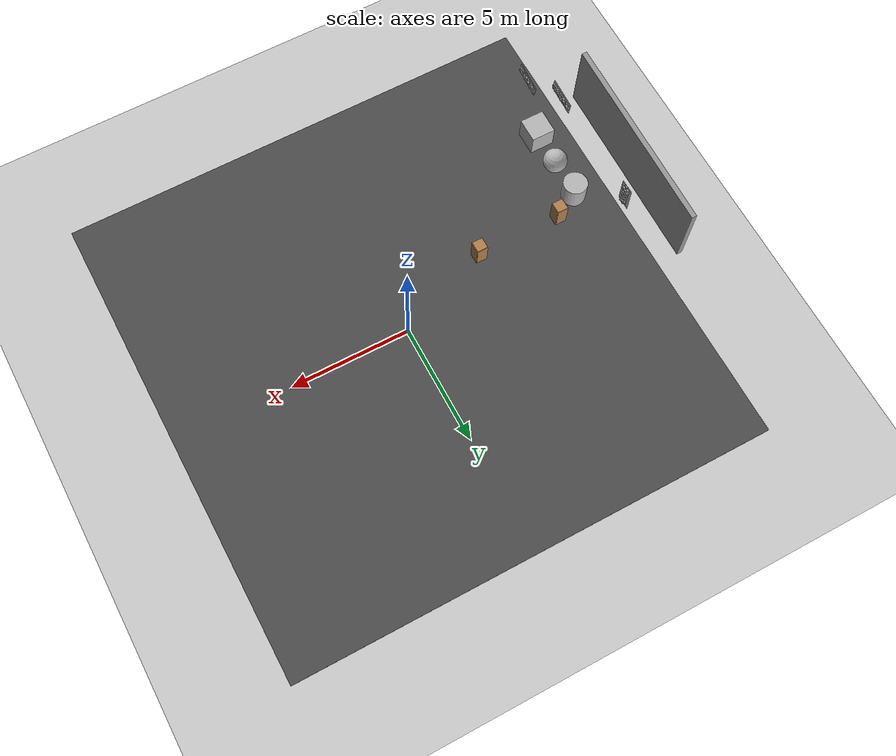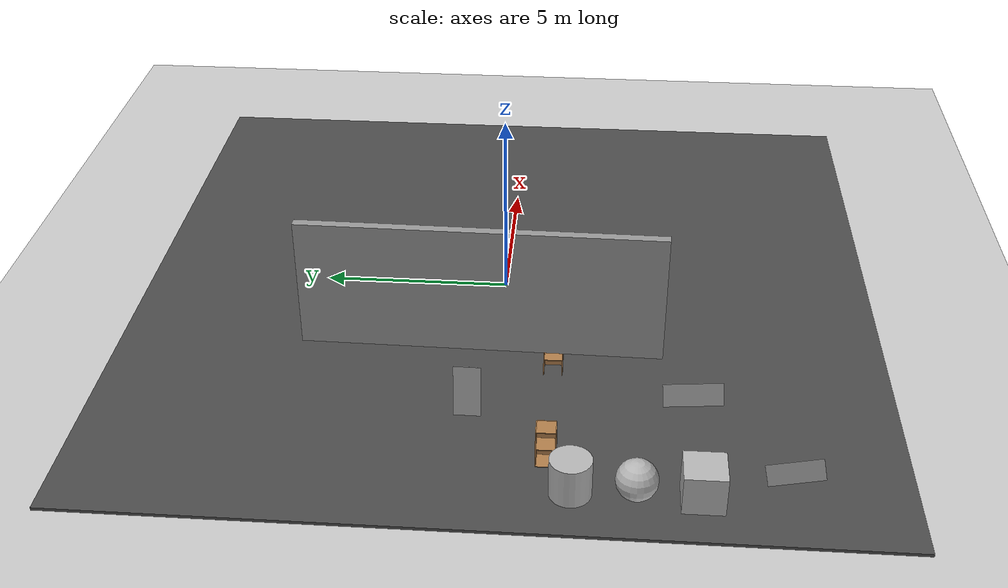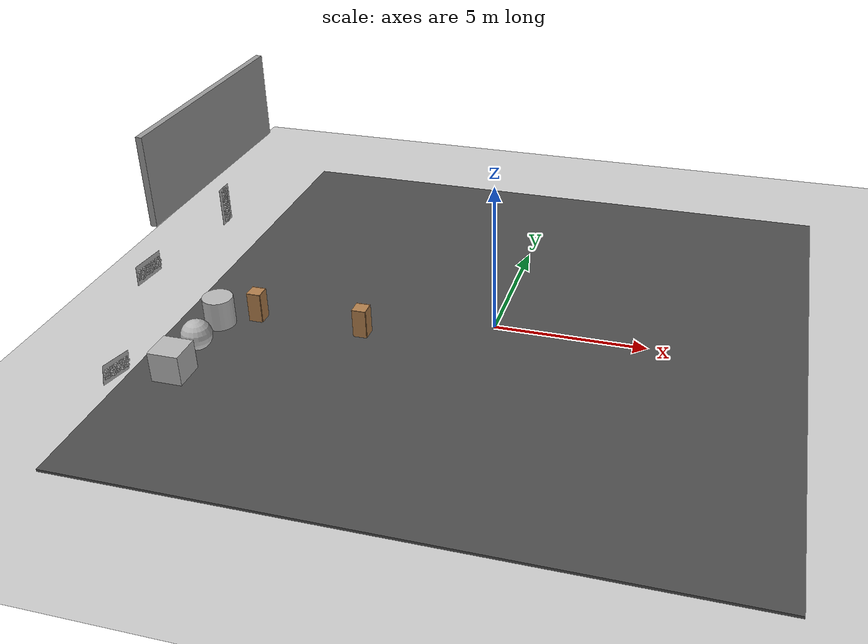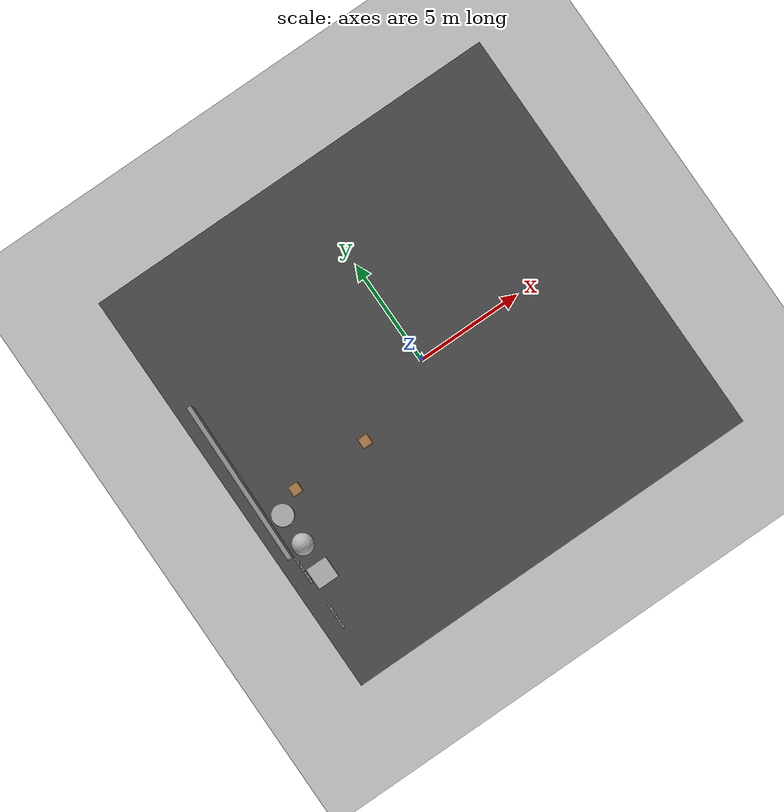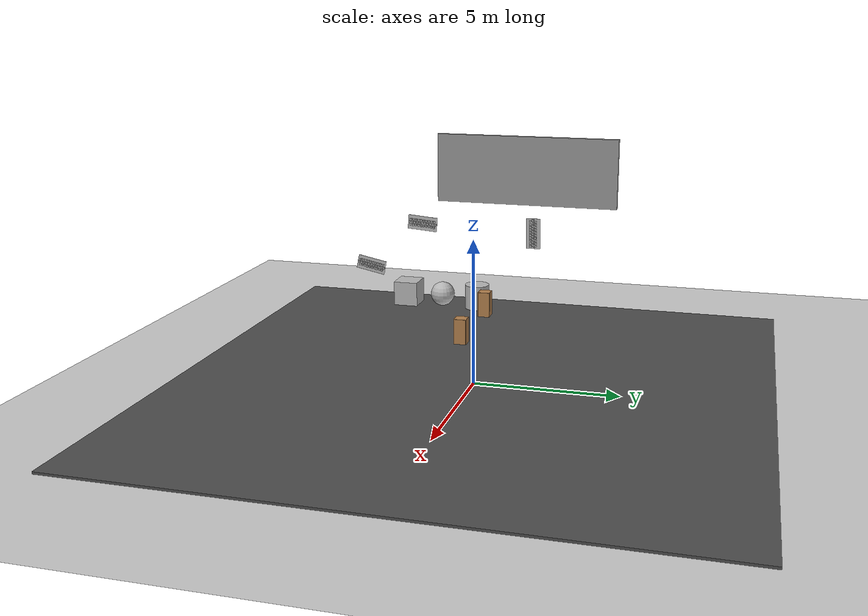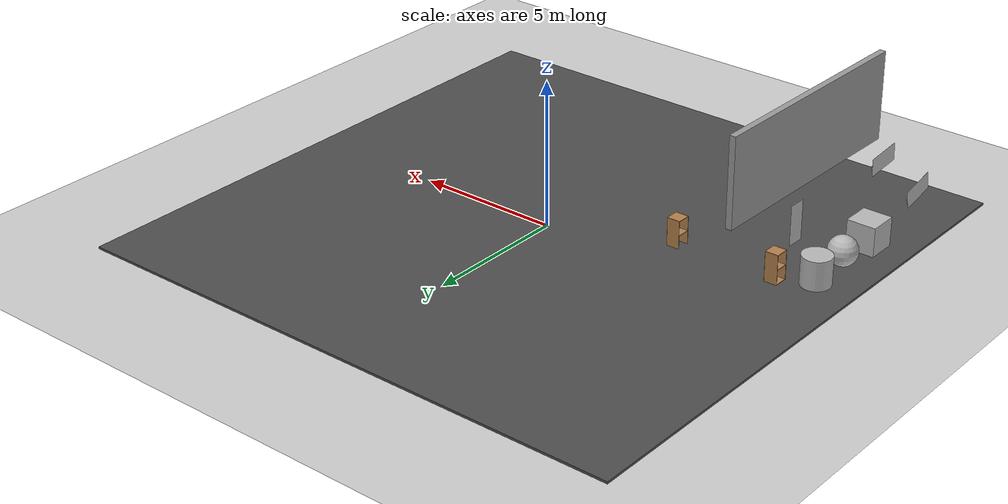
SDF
<sdf version="1.4">
 <world name="default">
  <model name="ground_plane">
   <static>1</static>
   <link name="link">
    <collision name="collision">
     <geometry><plane><normal>0 0 1</normal><size>100 100</size></plane></geometry>
     <surface><friction><ode><mu>100</mu><mu2>50</mu2></ode></friction></surface>
    </collision>
    <visual name="visual">
     <cast_shadows>0</cast_shadows>
     <geometry><plane><normal>0 0 1</normal><size>100 100</size></plane></geometry>
     <material>
      <script><uri>file://media/materials/scripts/gazebo.material</uri><name>Gazebo/Grey</name></script>
     </material>
    </visual>
    <velocity_decay><linear>0</linear><angular>0</angular></velocity_decay>
   </link>
  </model>
  <model name="grey_wall">
   <static>1</static>
   <link name="link">
    <pose>0 0 1.4 0 -0 0</pose>
    <collision name="collision"><geometry><box><size>7.5 0.2 2.8</size></box></geometry></collision>
    <visual name="visual">
     <cast_shadows>0</cast_shadows>
     <geometry><box><size>7.5 0.2 2.8</size></box></geometry>
     <material>
      <script>
       <uri>model://grey_wall/materials/scripts</uri>
       <uri>model://grey_wall/materials/textures</uri>
       <name>vrc/grey_wall</name>
      </script>
     </material>
    </visual>
    <velocity_decay><linear>0</linear><angular>0</angular></velocity_decay>
   </link>
   <pose>-9.26288 -0.192546 4.42606 0 -0 1.55593</pose>
  </model>
  <model name="textured_shapes">
   <pose>-8.70069 -3.6194 0.55 0 -0 0</pose>
   <link name="box">
    <pose>0 -1.5 0 0 -0 0</pose>
    <collision name="collision"><geometry><box><size>1 1 1</size></box></geometry></collision>
    <visual name="visual">
     <geometry><box><size>1 1 1</size></box></geometry>
     <material>
      <script>
       <uri>model://textured_shapes/materials/scripts</uri>
       <uri>model://textured_shapes/materials/textures</uri>
       <name>TexturedShape/Squares</name>
      </script>
     </material>
    </visual>
    <velocity_decay><linear>0</linear><angular>0</angular></velocity_decay>
    <inertial>
     <inertia><ixx>1</ixx><ixy>0</ixy><ixz>0</ixz><iyy>1</iyy><iyz>0</iyz><izz>1</izz></inertia>
     <mass>1</mass>
    </inertial>
   </link>
   <link name="sphere">
    <collision name="collision"><geometry><sphere><radius>0.5</radius></sphere></geometry></collision>
    <visual name="visual">
     <geometry><sphere><radius>0.5</radius></sphere></geometry>
     <material>
      <script>
       <uri>model://textured_shapes/materials/scripts</uri>
       <uri>model://textured_shapes/materials/textures</uri>
       <name>TexturedShape/Squares</name>
      </script>
     </material>
    </visual>
    <velocity_decay><linear>0</linear><angular>0</angular></velocity_decay>
    <inertial>
     <inertia><ixx>1</ixx><ixy>0</ixy><ixz>0</ixz><iyy>1</iyy><iyz>0</iyz><izz>1</izz></inertia>
     <mass>1</mass>
    </inertial>
   </link>
   <link name="cylinder">
    <pose>0 1.5 0 0 -0 0</pose>
    <collision name="collision">
     <geometry><cylinder><radius>0.5</radius><length>1</length></cylinder></geometry>
    </collision>
    <visual name="visual">
     <geometry><cylinder><radius>0.5</radius><length>1</length></cylinder></geometry>
     <material>
      <script>
       <uri>model://textured_shapes/materials/scripts</uri>
       <uri>model://textured_shapes/materials/textures</uri>
       <name>TexturedShape/Squares</name>
      </script>
     </material>
    </visual>
    <velocity_decay><linear>0</linear><angular>0</angular></velocity_decay>
    <inertial>
     <inertia><ixx>1</ixx><ixy>0</ixy><ixz>0</ixz><iyy>1</iyy><iyz>0</iyz><izz>1</izz></inertia>
     <mass>1</mass>
    </inertial>
   </link>
   <static>0</static>
  </model>
  <model name="asphalt_plane_0">
   <static>1</static>
   <link name="link">
    <collision name="collision"><geometry><box><size>20 20 0.1</size></box></geometry></collision>
    <visual name="visual">
     <cast_shadows>0</cast_shadows>
     <geometry><box><size>20 20 0.1</size></box></geometry>
     <material>
      <script>
       <uri>model://asphalt_plane/materials/scripts</uri>
       <uri>model://asphalt_plane/materials/textures</uri>
       <name>vrc/asphalt</name>
      </script>
     </material>
    </visual>
    <velocity_decay><linear>0</linear><angular>0</angular></velocity_decay>
   </link>
   <pose>-0.08673 -0.042897 0 0 -0 0</pose>
  </model>
  <model name="frc2016_roughterrain_4">
   <static>1</static>
   <link name="link">
    <visual name="platform">
     <pose>0 0 0.08269 0 -0 0</pose>
     <geometry><box><size>1.27 0.5969 0.003175</size></box></geometry>
    </visual>
    <collision name="platform">
     <pose>0 0 0.08269 0 -0 0</pose>
     <geometry><box><size>1.27 0.5969 0.003175</size></box></geometry>
    </collision>
    <visual name="row1_block1_sm">
     <pose>0.51435 0.1143 0.09698 0 -0 0</pose>
     <geometry><box><size>0.0762 0.0762 0.0254</size></box></geometry>
    </visual>
    <collision name="row1_block1_sm">
     <pose>0.51435 0.1143 0.09698 0 -0 0</pose>
     <geometry><box><size>0.0762 0.0762 0.0254</size></box></geometry>
    </collision>
    <visual name="row1_block2_lg">
     <pose>0.40005 0.1143 0.12238 0 -0 0</pose>
     <geometry><box><size>0.0762 0.0762 0.0762</size></box></geometry>
    </visual>
    <collision name="row1_block2_lg">
     <pose>0.40005 0.1143 0.12238 0 -0 0</pose>
     <geometry><box><size>0.0762 0.0762 0.0762</size></box></geometry>
    </collision>
    <visual name="row1_block3_md">
     <pose>0.28575 0.1143 0.10968 0 -0 0</pose>
     <geometry><box><size>0.0762 0.0762 0.0508</size></box></geometry>
    </visual>
    <collision name="row1_block3_md">
     <pose>0.28575 0.1143 0.10968 0 -0 0</pose>
     <geometry><box><size>0.0762 0.0762 0.0508</size></box></geometry>
    </collision>
    <visual name="row1_block4_sm">
     <pose>0.17145 0.1143 0.09698 0 -0 0</pose>
     <geometry><box><size>0.0762 0.0762 0.0254</size></box></geometry>
    </visual>
    <collision name="row1_block4_sm">
     <pose>0.17145 0.1143 0.09698 0 -0 0</pose>
     <geometry><box><size>0.0762 0.0762 0.0254</size></box></geometry>
    </collision>
    <visual name="row1_block5_md">
     <pose>0.05715 0.1143 0.10968 0 -0 0</pose>
     <geometry><box><size>0.0762 0.0762 0.0508</size></box></geometry>
    </visual>
    <collision name="row1_block5_md">
     <pose>0.05715 0.1143 0.10968 0 -0 0</pose>
     <geometry><box><size>0.0762 0.0762 0.0508</size></box></geometry>
    </collision>
    <visual name="row1_block6_lg">
     <pose>-0.05715 0.1143 0.12238 0 -0 0</pose>
     <geometry><box><size>0.0762 0.0762 0.0762</size></box></geometry>
    </visual>
    <collision name="row1_block6_lg">
     <pose>-0.05715 0.1143 0.12238 0 -0 0</pose>
     <geometry><box><size>0.0762 0.0762 0.0762</size></box></geometry>
    </collision>
    <visual name="row1_block7_sm">
     <pose>-0.17145 0.1143 0.09698 0 -0 0</pose>
     <geometry><box><size>0.0762 0.0762 0.0254</size></box></geometry>
    </visual>
    <collision name="row1_block7_sm">
     <pose>-0.17145 0.1143 0.09698 0 -0 0</pose>
     <geometry><box><size>0.0762 0.0762 0.0254</size></box></geometry>
    </collision>
    <visual name="row1_block8_sm">
     <pose>-0.28575 0.1143 0.09698 0 -0 0</pose>
     <geometry><box><size>0.0762 0.0762 0.0254</size></box></geometry>
    </visual>
    <collision name="row1_block8_sm">
     <pose>-0.28575 0.1143 0.09698 0 -0 0</pose>
     <geometry><box><size>0.0762 0.0762 0.0254</size></box></geometry>
    </collision>
    <visual name="row1_block9_md">
     <pose>-0.40005 0.1143 0.10968 0 -0 0</pose>
     <geometry><box><size>0.0762 0.0762 0.0508</size></box></geometry>
    </visual>
    <collision name="row1_block9_md">
     <pose>-0.40005 0.1143 0.10968 0 -0 0</pose>
     <geometry><box><size>0.0762 0.0762 0.0508</size></box></geometry>
    </collision>
    <visual name="row1_block10_lg">
     <pose>-0.51435 0.1143 0.12238 0 -0 0</pose>
     <geometry><box><size>0.0762 0.0762 0.0762</size></box></geometry>
    </visual>
    <collision name="row1_block10_lg">
     <pose>-0.51435 0.1143 0.12238 0 -0 0</pose>
     <geometry><box><size>0.0762 0.0762 0.0762</size></box></geometry>
    </collision>
    <visual name="row2_block1_md">
     <pose>0.5715 0 0.10968 0 -0 0</pose>
     <geometry><box><size>0.0762 0.0762 0.0508</size></box></geometry>
    </visual>
    <collision name="row2_block1_md">
     <pose>0.5715 0 0.10968 0 -0 0</pose>
     <geometry><box><size>0.0762 0.0762 0.0508</size></box></geometry>
    </collision>
    <visual name="row2_block2_sm">
     <pose>0.4572 0 0.09698 0 -0 0</pose>
     <geometry><box><size>0.0762 0.0762 0.0254</size></box></geometry>
    </visual>
    <collision name="row2_block2_sm">
     <pose>0.4572 0 0.09698 0 -0 0</pose>
     <geometry><box><size>0.0762 0.0762 0.0254</size></box></geometry>
    </collision>
    <visual name="row2_block3_lg">
     <pose>0.3429 0 0.12238 0 -0 0</pose>
     <geometry><box><size>0.0762 0.0762 0.0762</size></box></geometry>
    </visual>
    <collision name="row2_block3_lg">
     <pose>0.3429 0 0.12238 0 -0 0</pose>
     <geometry><box><size>0.0762 0.0762 0.0762</size></box></geometry>
    </collision>
    <visual name="row2_block4_md">
     <pose>0.2286 0 0.10968 0 -0 0</pose>
     <geometry><box><size>0.0762 0.0762 0.0508</size></box></geometry>
    </visual>
    <collision name="row2_block4_md">
     <pose>0.2286 0 0.10968 0 -0 0</pose>
     <geometry><box><size>0.0762 0.0762 0.0508</size></box></geometry>
    </collision>
    <visual name="row2_block5_lg">
     <pose>0.1143 0 0.12238 0 -0 0</pose>
     <geometry><box><size>0.0762 0.0762 0.0762</size></box></geometry>
    </visual>
    <collision name="row2_block5_lg">
     <pose>0.1143 0 0.12238 0 -0 0</pose>
     <geometry><box><size>0.0762 0.0762 0.0762</size></box></geometry>
    </collision>
    <visual name="row2_block6_sm">
     <pose>0 0 0.09698 0 -0 0</pose>
     <geometry><box><size>0.0762 0.0762 0.0254</size></box></geometry>
    </visual>
    <collision name="row2_block6_sm">
     <pose>0 0 0.09698 0 -0 0</pose>
     <geometry><box><size>0.0762 0.0762 0.0254</size></box></geometry>
    </collision>
    <visual name="row2_block7_md">
     <pose>-0.1143 0 0.10968 0 -0 0</pose>
     <geometry><box><size>0.0762 0.0762 0.0508</size></box></geometry>
    </visual>
    <collision name="row2_block7_md">
     <pose>-0.1143 0 0.10968 0 -0 0</pose>
     <geometry><box><size>0.0762 0.0762 0.0508</size></box></geometry>
    </collision>
    <visual name="row2_block8_lg">
     <pose>-0.2286 0 0.12238 0 -0 0</pose>
     <geometry><box><size>0.0762 0.0762 0.0762</size></box></geometry>
    </visual>
    <collision name="row2_block8_lg">
     <pose>-0.2286 0 0.12238 0 -0 0</pose>
     <geometry><box><size>0.0762 0.0762 0.0762</size></box></geometry>
    </collision>
    <visual name="row2_block9_sm">
     <pose>-0.3429 0 0.09698 0 -0 0</pose>
     <geometry><box><size>0.0762 0.0762 0.0254</size></box></geometry>
    </visual>
    <collision name="row2_block9_sm">
     <pose>-0.3429 0 0.09698 0 -0 0</pose>
     <geometry><box><size>0.0762 0.0762 0.0254</size></box></geometry>
    </collision>
    <visual name="row2_block10_lg">
     <pose>-0.4572 0 0.12238 0 -0 0</pose>
     <geometry><box><size>0.0762 0.0762 0.0762</size></box></geometry>
    </visual>
    <collision name="row2_block10_lg">
     <pose>-0.4572 0 0.12238 0 -0 0</pose>
     <geometry><box><size>0.0762 0.0762 0.0762</size></box></geometry>
    </collision>
    <visual name="row2_block11_md">
     <pose>-0.5715 0 0.10968 0 -0 0</pose>
     <geometry><box><size>0.0762 0.0762 0.0508</size></box></geometry>
    </visual>
    <collision name="row2_block11_md">
     <pose>-0.5715 0 0.10968 0 -0 0</pose>
     <geometry><box><size>0.0762 0.0762 0.0508</size></box></geometry>
    </collision>
    <visual name="row3_block1_lg">
     <pose>0.51435 -0.1143 0.12238 0 -0 0</pose>
     <geometry><box><size>0.0762 0.0762 0.0762</size></box></geometry>
    </visual>
    <collision name="row3_block1_lg">
     <pose>0.51435 -0.1143 0.12238 0 -0 0</pose>
     <geometry><box><size>0.0762 0.0762 0.0762</size></box></geometry>
    </collision>
    <visual name="row3_block2_md">
     <pose>0.40005 -0.1143 0.10968 0 -0 0</pose>
     <geometry><box><size>0.0762 0.0762 0.0508</size></box></geometry>
    </visual>
    <collision name="row3_block2_md">
     <pose>0.40005 -0.1143 0.10968 0 -0 0</pose>
     <geometry><box><size>0.0762 0.0762 0.0508</size></box></geometry>
    </collision>
    <visual name="row3_block3_lg">
     <pose>0.28575 -0.1143 0.12238 0 -0 0</pose>
     <geometry><box><size>0.0762 0.0762 0.0762</size></box></geometry>
    </visual>
    <collision name="row3_block3_lg">
     <pose>0.28575 -0.1143 0.12238 0 -0 0</pose>
     <geometry><box><size>0.0762 0.0762 0.0762</size></box></geometry>
    </collision>
    <visual name="row3_block4_sm">
     <pose>0.17145 -0.1143 0.09698 0 -0 0</pose>
     <geometry><box><size>0.0762 0.0762 0.0254</size></box></geometry>
    </visual>
    <collision name="row3_block4_sm">
     <pose>0.17145 -0.1143 0.09698 0 -0 0</pose>
     <geometry><box><size>0.0762 0.0762 0.0254</size></box></geometry>
    </collision>
    <visual name="row3_block5_md">
     <pose>0.05715 -0.1143 0.10968 0 -0 0</pose>
     <geometry><box><size>0.0762 0.0762 0.0508</size></box></geometry>
    </visual>
    <collision name="row3_block5_md">
     <pose>0.05715 -0.1143 0.10968 0 -0 0</pose>
     <geometry><box><size>0.0762 0.0762 0.0508</size></box></geometry>
    </collision>
    <visual name="row3_block6_md">
     <pose>-0.05715 -0.1143 0.10968 0 -0 0</pose>
     <geometry><box><size>0.0762 0.0762 0.0508</size></box></geometry>
    </visual>
    <collision name="row3_block6_md">
     <pose>-0.05715 -0.1143 0.10968 0 -0 0</pose>
     <geometry><box><size>0.0762 0.0762 0.0508</size></box></geometry>
    </collision>
    <visual name="row3_block7_lg">
     <pose>-0.17145 -0.1143 0.12238 0 -0 0</pose>
     <geometry><box><size>0.0762 0.0762 0.0762</size></box></geometry>
    </visual>
    <collision name="row3_block7_lg">
     <pose>-0.17145 -0.1143 0.12238 0 -0 0</pose>
     <geometry><box><size>0.0762 0.0762 0.0762</size></box></geometry>
    </collision>
    <visual name="row3_block8_sm">
     <pose>-0.28575 -0.1143 0.09698 0 -0 0</pose>
     <geometry><box><size>0.0762 0.0762 0.0254</size></box></geometry>
    </visual>
    <collision name="row3_block8_sm">
     <pose>-0.28575 -0.1143 0.09698 0 -0 0</pose>
     <geometry><box><size>0.0762 0.0762 0.0254</size></box></geometry>
    </collision>
    <visual name="row3_block9_md">
     <pose>-0.40005 -0.1143 0.10968 0 -0 0</pose>
     <geometry><box><size>0.0762 0.0762 0.0508</size></box></geometry>
    </visual>
    <collision name="row3_block9_md">
     <pose>-0.40005 -0.1143 0.10968 0 -0 0</pose>
     <geometry><box><size>0.0762 0.0762 0.0508</size></box></geometry>
    </collision>
    <visual name="row3_block10_sm">
     <pose>-0.51435 -0.1143 0.09698 0 -0 0</pose>
     <geometry><box><size>0.0762 0.0762 0.0254</size></box></geometry>
    </visual>
    <collision name="row3_block10_sm">
     <pose>-0.51435 -0.1143 0.09698 0 -0 0</pose>
     <geometry><box><size>0.0762 0.0762 0.0254</size></box></geometry>
    </collision>
    <velocity_decay><linear>0</linear><angular>0</angular></velocity_decay>
   </link>
   <pose>-9.34136 -4.64947 3.41336 -1.55432 -0.08239 -1.57215</pose>
  </model>
  <model name="frc2016_roughterrain_6">
   <static>1</static>
   <link name="link">
    <visual name="platform">
     <pose>0 0 0.08269 0 -0 0</pose>
     <geometry><box><size>1.27 0.5969 0.003175</size></box></geometry>
    </visual>
    <collision name="platform">
     <pose>0 0 0.08269 0 -0 0</pose>
     <geometry><box><size>1.27 0.5969 0.003175</size></box></geometry>
    </collision>
    <visual name="row1_block1_sm">
     <pose>0.51435 0.1143 0.09698 0 -0 0</pose>
     <geometry><box><size>0.0762 0.0762 0.0254</size></box></geometry>
    </visual>
    <collision name="row1_block1_sm">
     <pose>0.51435 0.1143 0.09698 0 -0 0</pose>
     <geometry><box><size>0.0762 0.0762 0.0254</size></box></geometry>
    </collision>
    <visual name="row1_block2_lg">
     <pose>0.40005 0.1143 0.12238 0 -0 0</pose>
     <geometry><box><size>0.0762 0.0762 0.0762</size></box></geometry>
    </visual>
    <collision name="row1_block2_lg">
     <pose>0.40005 0.1143 0.12238 0 -0 0</pose>
     <geometry><box><size>0.0762 0.0762 0.0762</size></box></geometry>
    </collision>
    <visual name="row1_block3_md">
     <pose>0.28575 0.1143 0.10968 0 -0 0</pose>
     <geometry><box><size>0.0762 0.0762 0.0508</size></box></geometry>
    </visual>
    <collision name="row1_block3_md">
     <pose>0.28575 0.1143 0.10968 0 -0 0</pose>
     <geometry><box><size>0.0762 0.0762 0.0508</size></box></geometry>
    </collision>
    <visual name="row1_block4_sm">
     <pose>0.17145 0.1143 0.09698 0 -0 0</pose>
     <geometry><box><size>0.0762 0.0762 0.0254</size></box></geometry>
    </visual>
    <collision name="row1_block4_sm">
     <pose>0.17145 0.1143 0.09698 0 -0 0</pose>
     <geometry><box><size>0.0762 0.0762 0.0254</size></box></geometry>
    </collision>
    <visual name="row1_block5_md">
     <pose>0.05715 0.1143 0.10968 0 -0 0</pose>
     <geometry><box><size>0.0762 0.0762 0.0508</size></box></geometry>
    </visual>
    <collision name="row1_block5_md">
     <pose>0.05715 0.1143 0.10968 0 -0 0</pose>
     <geometry><box><size>0.0762 0.0762 0.0508</size></box></geometry>
    </collision>
    <visual name="row1_block6_lg">
     <pose>-0.05715 0.1143 0.12238 0 -0 0</pose>
     <geometry><box><size>0.0762 0.0762 0.0762</size></box></geometry>
    </visual>
    <collision name="row1_block6_lg">
     <pose>-0.05715 0.1143 0.12238 0 -0 0</pose>
     <geometry><box><size>0.0762 0.0762 0.0762</size></box></geometry>
    </collision>
    <visual name="row1_block7_sm">
     <pose>-0.17145 0.1143 0.09698 0 -0 0</pose>
     <geometry><box><size>0.0762 0.0762 0.0254</size></box></geometry>
    </visual>
    <collision name="row1_block7_sm">
     <pose>-0.17145 0.1143 0.09698 0 -0 0</pose>
     <geometry><box><size>0.0762 0.0762 0.0254</size></box></geometry>
    </collision>
    <visual name="row1_block8_sm">
     <pose>-0.28575 0.1143 0.09698 0 -0 0</pose>
     <geometry><box><size>0.0762 0.0762 0.0254</size></box></geometry>
    </visual>
    <collision name="row1_block8_sm">
     <pose>-0.28575 0.1143 0.09698 0 -0 0</pose>
     <geometry><box><size>0.0762 0.0762 0.0254</size></box></geometry>
    </collision>
    <visual name="row1_block9_md">
     <pose>-0.40005 0.1143 0.10968 0 -0 0</pose>
     <geometry><box><size>0.0762 0.0762 0.0508</size></box></geometry>
    </visual>
    <collision name="row1_block9_md">
     <pose>-0.40005 0.1143 0.10968 0 -0 0</pose>
     <geometry><box><size>0.0762 0.0762 0.0508</size></box></geometry>
    </collision>
    <visual name="row1_block10_lg">
     <pose>-0.51435 0.1143 0.12238 0 -0 0</pose>
     <geometry><box><size>0.0762 0.0762 0.0762</size></box></geometry>
    </visual>
    <collision name="row1_block10_lg">
     <pose>-0.51435 0.1143 0.12238 0 -0 0</pose>
     <geometry><box><size>0.0762 0.0762 0.0762</size></box></geometry>
    </collision>
    <visual name="row2_block1_md">
     <pose>0.5715 0 0.10968 0 -0 0</pose>
     <geometry><box><size>0.0762 0.0762 0.0508</size></box></geometry>
    </visual>
    <collision name="row2_block1_md">
     <pose>0.5715 0 0.10968 0 -0 0</pose>
     <geometry><box><size>0.0762 0.0762 0.0508</size></box></geometry>
    </collision>
    <visual name="row2_block2_sm">
     <pose>0.4572 0 0.09698 0 -0 0</pose>
     <geometry><box><size>0.0762 0.0762 0.0254</size></box></geometry>
    </visual>
    <collision name="row2_block2_sm">
     <pose>0.4572 0 0.09698 0 -0 0</pose>
     <geometry><box><size>0.0762 0.0762 0.0254</size></box></geometry>
    </collision>
    <visual name="row2_block3_lg">
     <pose>0.3429 0 0.12238 0 -0 0</pose>
     <geometry><box><size>0.0762 0.0762 0.0762</size></box></geometry>
    </visual>
    <collision name="row2_block3_lg">
     <pose>0.3429 0 0.12238 0 -0 0</pose>
     <geometry><box><size>0.0762 0.0762 0.0762</size></box></geometry>
    </collision>
    <visual name="row2_block4_md">
     <pose>0.2286 0 0.10968 0 -0 0</pose>
     <geometry><box><size>0.0762 0.0762 0.0508</size></box></geometry>
    </visual>
    <collision name="row2_block4_md">
     <pose>0.2286 0 0.10968 0 -0 0</pose>
     <geometry><box><size>0.0762 0.0762 0.0508</size></box></geometry>
    </collision>
    <visual name="row2_block5_lg">
     <pose>0.1143 0 0.12238 0 -0 0</pose>
     <geometry><box><size>0.0762 0.0762 0.0762</size></box></geometry>
    </visual>
    <collision name="row2_block5_lg">
     <pose>0.1143 0 0.12238 0 -0 0</pose>
     <geometry><box><size>0.0762 0.0762 0.0762</size></box></geometry>
    </collision>
    <visual name="row2_block6_sm">
     <pose>0 0 0.09698 0 -0 0</pose>
     <geometry><box><size>0.0762 0.0762 0.0254</size></box></geometry>
    </visual>
    <collision name="row2_block6_sm">
     <pose>0 0 0.09698 0 -0 0</pose>
     <geometry><box><size>0.0762 0.0762 0.0254</size></box></geometry>
    </collision>
    <visual name="row2_block7_md">
     <pose>-0.1143 0 0.10968 0 -0 0</pose>
     <geometry><box><size>0.0762 0.0762 0.0508</size></box></geometry>
    </visual>
    <collision name="row2_block7_md">
     <pose>-0.1143 0 0.10968 0 -0 0</pose>
     <geometry><box><size>0.0762 0.0762 0.0508</size></box></geometry>
    </collision>
    <visual name="row2_block8_lg">
     <pose>-0.2286 0 0.12238 0 -0 0</pose>
     <geometry><box><size>0.0762 0.0762 0.0762</size></box></geometry>
    </visual>
    <collision name="row2_block8_lg">
     <pose>-0.2286 0 0.12238 0 -0 0</pose>
     <geometry><box><size>0.0762 0.0762 0.0762</size></box></geometry>
    </collision>
    <visual name="row2_block9_sm">
     <pose>-0.3429 0 0.09698 0 -0 0</pose>
     <geometry><box><size>0.0762 0.0762 0.0254</size></box></geometry>
    </visual>
    <collision name="row2_block9_sm">
     <pose>-0.3429 0 0.09698 0 -0 0</pose>
     <geometry><box><size>0.0762 0.0762 0.0254</size></box></geometry>
    </collision>
    <visual name="row2_block10_lg">
     <pose>-0.4572 0 0.12238 0 -0 0</pose>
     <geometry><box><size>0.0762 0.0762 0.0762</size></box></geometry>
    </visual>
    <collision name="row2_block10_lg">
     <pose>-0.4572 0 0.12238 0 -0 0</pose>
     <geometry><box><size>0.0762 0.0762 0.0762</size></box></geometry>
    </collision>
    <visual name="row2_block11_md">
     <pose>-0.5715 0 0.10968 0 -0 0</pose>
     <geometry><box><size>0.0762 0.0762 0.0508</size></box></geometry>
    </visual>
    <collision name="row2_block11_md">
     <pose>-0.5715 0 0.10968 0 -0 0</pose>
     <geometry><box><size>0.0762 0.0762 0.0508</size></box></geometry>
    </collision>
    <visual name="row3_block1_lg">
     <pose>0.51435 -0.1143 0.12238 0 -0 0</pose>
     <geometry><box><size>0.0762 0.0762 0.0762</size></box></geometry>
    </visual>
    <collision name="row3_block1_lg">
     <pose>0.51435 -0.1143 0.12238 0 -0 0</pose>
     <geometry><box><size>0.0762 0.0762 0.0762</size></box></geometry>
    </collision>
    <visual name="row3_block2_md">
     <pose>0.40005 -0.1143 0.10968 0 -0 0</pose>
     <geometry><box><size>0.0762 0.0762 0.0508</size></box></geometry>
    </visual>
    <collision name="row3_block2_md">
     <pose>0.40005 -0.1143 0.10968 0 -0 0</pose>
     <geometry><box><size>0.0762 0.0762 0.0508</size></box></geometry>
    </collision>
    <visual name="row3_block3_lg">
     <pose>0.28575 -0.1143 0.12238 0 -0 0</pose>
     <geometry><box><size>0.0762 0.0762 0.0762</size></box></geometry>
    </visual>
    <collision name="row3_block3_lg">
     <pose>0.28575 -0.1143 0.12238 0 -0 0</pose>
     <geometry><box><size>0.0762 0.0762 0.0762</size></box></geometry>
    </collision>
    <visual name="row3_block4_sm">
     <pose>0.17145 -0.1143 0.09698 0 -0 0</pose>
     <geometry><box><size>0.0762 0.0762 0.0254</size></box></geometry>
    </visual>
    <collision name="row3_block4_sm">
     <pose>0.17145 -0.1143 0.09698 0 -0 0</pose>
     <geometry><box><size>0.0762 0.0762 0.0254</size></box></geometry>
    </collision>
    <visual name="row3_block5_md">
     <pose>0.05715 -0.1143 0.10968 0 -0 0</pose>
     <geometry><box><size>0.0762 0.0762 0.0508</size></box></geometry>
    </visual>
    <collision name="row3_block5_md">
     <pose>0.05715 -0.1143 0.10968 0 -0 0</pose>
     <geometry><box><size>0.0762 0.0762 0.0508</size></box></geometry>
    </collision>
    <visual name="row3_block6_md">
     <pose>-0.05715 -0.1143 0.10968 0 -0 0</pose>
     <geometry><box><size>0.0762 0.0762 0.0508</size></box></geometry>
    </visual>
    <collision name="row3_block6_md">
     <pose>-0.05715 -0.1143 0.10968 0 -0 0</pose>
     <geometry><box><size>0.0762 0.0762 0.0508</size></box></geometry>
    </collision>
    <visual name="row3_block7_lg">
     <pose>-0.17145 -0.1143 0.12238 0 -0 0</pose>
     <geometry><box><size>0.0762 0.0762 0.0762</size></box></geometry>
    </visual>
    <collision name="row3_block7_lg">
     <pose>-0.17145 -0.1143 0.12238 0 -0 0</pose>
     <geometry><box><size>0.0762 0.0762 0.0762</size></box></geometry>
    </collision>
    <visual name="row3_block8_sm">
     <pose>-0.28575 -0.1143 0.09698 0 -0 0</pose>
     <geometry><box><size>0.0762 0.0762 0.0254</size></box></geometry>
    </visual>
    <collision name="row3_block8_sm">
     <pose>-0.28575 -0.1143 0.09698 0 -0 0</pose>
     <geometry><box><size>0.0762 0.0762 0.0254</size></box></geometry>
    </collision>
    <visual name="row3_block9_md">
     <pose>-0.40005 -0.1143 0.10968 0 -0 0</pose>
     <geometry><box><size>0.0762 0.0762 0.0508</size></box></geometry>
    </visual>
    <collision name="row3_block9_md">
     <pose>-0.40005 -0.1143 0.10968 0 -0 0</pose>
     <geometry><box><size>0.0762 0.0762 0.0508</size></box></geometry>
    </collision>
    <visual name="row3_block10_sm">
     <pose>-0.51435 -0.1143 0.09698 0 -0 0</pose>
     <geometry><box><size>0.0762 0.0762 0.0254</size></box></geometry>
    </visual>
    <collision name="row3_block10_sm">
     <pose>-0.51435 -0.1143 0.09698 0 -0 0</pose>
     <geometry><box><size>0.0762 0.0762 0.0254</size></box></geometry>
    </collision>
    <velocity_decay><linear>0</linear><angular>0</angular></velocity_decay>
   </link>
   <pose>-9.32777 0.125858 3.23092 -2.40599 -1.55643 -0.736523</pose>
  </model>
  <model name="frc2016_roughterrain_7">
   <static>1</static>
   <link name="link">
    <visual name="platform">
     <pose>0 0 0.08269 0 -0 0</pose>
     <geometry><box><size>1.27 0.5969 0.003175</size></box></geometry>
    </visual>
    <collision name="platform">
     <pose>0 0 0.08269 0 -0 0</pose>
     <geometry><box><size>1.27 0.5969 0.003175</size></box></geometry>
    </collision>
    <visual name="row1_block1_sm">
     <pose>0.51435 0.1143 0.09698 0 -0 0</pose>
     <geometry><box><size>0.0762 0.0762 0.0254</size></box></geometry>
    </visual>
    <collision name="row1_block1_sm">
     <pose>0.51435 0.1143 0.09698 0 -0 0</pose>
     <geometry><box><size>0.0762 0.0762 0.0254</size></box></geometry>
    </collision>
    <visual name="row1_block2_lg">
     <pose>0.40005 0.1143 0.12238 0 -0 0</pose>
     <geometry><box><size>0.0762 0.0762 0.0762</size></box></geometry>
    </visual>
    <collision name="row1_block2_lg">
     <pose>0.40005 0.1143 0.12238 0 -0 0</pose>
     <geometry><box><size>0.0762 0.0762 0.0762</size></box></geometry>
    </collision>
    <visual name="row1_block3_md">
     <pose>0.28575 0.1143 0.10968 0 -0 0</pose>
     <geometry><box><size>0.0762 0.0762 0.0508</size></box></geometry>
    </visual>
    <collision name="row1_block3_md">
     <pose>0.28575 0.1143 0.10968 0 -0 0</pose>
     <geometry><box><size>0.0762 0.0762 0.0508</size></box></geometry>
    </collision>
    <visual name="row1_block4_sm">
     <pose>0.17145 0.1143 0.09698 0 -0 0</pose>
     <geometry><box><size>0.0762 0.0762 0.0254</size></box></geometry>
    </visual>
    <collision name="row1_block4_sm">
     <pose>0.17145 0.1143 0.09698 0 -0 0</pose>
     <geometry><box><size>0.0762 0.0762 0.0254</size></box></geometry>
    </collision>
    <visual name="row1_block5_md">
     <pose>0.05715 0.1143 0.10968 0 -0 0</pose>
     <geometry><box><size>0.0762 0.0762 0.0508</size></box></geometry>
    </visual>
    <collision name="row1_block5_md">
     <pose>0.05715 0.1143 0.10968 0 -0 0</pose>
     <geometry><box><size>0.0762 0.0762 0.0508</size></box></geometry>
    </collision>
    <visual name="row1_block6_lg">
     <pose>-0.05715 0.1143 0.12238 0 -0 0</pose>
     <geometry><box><size>0.0762 0.0762 0.0762</size></box></geometry>
    </visual>
    <collision name="row1_block6_lg">
     <pose>-0.05715 0.1143 0.12238 0 -0 0</pose>
     <geometry><box><size>0.0762 0.0762 0.0762</size></box></geometry>
    </collision>
    <visual name="row1_block7_sm">
     <pose>-0.17145 0.1143 0.09698 0 -0 0</pose>
     <geometry><box><size>0.0762 0.0762 0.0254</size></box></geometry>
    </visual>
    <collision name="row1_block7_sm">
     <pose>-0.17145 0.1143 0.09698 0 -0 0</pose>
     <geometry><box><size>0.0762 0.0762 0.0254</size></box></geometry>
    </collision>
    <visual name="row1_block8_sm">
     <pose>-0.28575 0.1143 0.09698 0 -0 0</pose>
     <geometry><box><size>0.0762 0.0762 0.0254</size></box></geometry>
    </visual>
    <collision name="row1_block8_sm">
     <pose>-0.28575 0.1143 0.09698 0 -0 0</pose>
     <geometry><box><size>0.0762 0.0762 0.0254</size></box></geometry>
    </collision>
    <visual name="row1_block9_md">
     <pose>-0.40005 0.1143 0.10968 0 -0 0</pose>
     <geometry><box><size>0.0762 0.0762 0.0508</size></box></geometry>
    </visual>
    <collision name="row1_block9_md">
     <pose>-0.40005 0.1143 0.10968 0 -0 0</pose>
     <geometry><box><size>0.0762 0.0762 0.0508</size></box></geometry>
    </collision>
    <visual name="row1_block10_lg">
     <pose>-0.51435 0.1143 0.12238 0 -0 0</pose>
     <geometry><box><size>0.0762 0.0762 0.0762</size></box></geometry>
    </visual>
    <collision name="row1_block10_lg">
     <pose>-0.51435 0.1143 0.12238 0 -0 0</pose>
     <geometry><box><size>0.0762 0.0762 0.0762</size></box></geometry>
    </collision>
    <visual name="row2_block1_md">
     <pose>0.5715 0 0.10968 0 -0 0</pose>
     <geometry><box><size>0.0762 0.0762 0.0508</size></box></geometry>
    </visual>
    <collision name="row2_block1_md">
     <pose>0.5715 0 0.10968 0 -0 0</pose>
     <geometry><box><size>0.0762 0.0762 0.0508</size></box></geometry>
    </collision>
    <visual name="row2_block2_sm">
     <pose>0.4572 0 0.09698 0 -0 0</pose>
     <geometry><box><size>0.0762 0.0762 0.0254</size></box></geometry>
    </visual>
    <collision name="row2_block2_sm">
     <pose>0.4572 0 0.09698 0 -0 0</pose>
     <geometry><box><size>0.0762 0.0762 0.0254</size></box></geometry>
    </collision>
    <visual name="row2_block3_lg">
     <pose>0.3429 0 0.12238 0 -0 0</pose>
     <geometry><box><size>0.0762 0.0762 0.0762</size></box></geometry>
    </visual>
    <collision name="row2_block3_lg">
     <pose>0.3429 0 0.12238 0 -0 0</pose>
     <geometry><box><size>0.0762 0.0762 0.0762</size></box></geometry>
    </collision>
    <visual name="row2_block4_md">
     <pose>0.2286 0 0.10968 0 -0 0</pose>
     <geometry><box><size>0.0762 0.0762 0.0508</size></box></geometry>
    </visual>
    <collision name="row2_block4_md">
     <pose>0.2286 0 0.10968 0 -0 0</pose>
     <geometry><box><size>0.0762 0.0762 0.0508</size></box></geometry>
    </collision>
    <visual name="row2_block5_lg">
     <pose>0.1143 0 0.12238 0 -0 0</pose>
     <geometry><box><size>0.0762 0.0762 0.0762</size></box></geometry>
    </visual>
    <collision name="row2_block5_lg">
     <pose>0.1143 0 0.12238 0 -0 0</pose>
     <geometry><box><size>0.0762 0.0762 0.0762</size></box></geometry>
    </collision>
    <visual name="row2_block6_sm">
     <pose>0 0 0.09698 0 -0 0</pose>
     <geometry><box><size>0.0762 0.0762 0.0254</size></box></geometry>
    </visual>
    <collision name="row2_block6_sm">
     <pose>0 0 0.09698 0 -0 0</pose>
     <geometry><box><size>0.0762 0.0762 0.0254</size></box></geometry>
    </collision>
    <visual name="row2_block7_md">
     <pose>-0.1143 0 0.10968 0 -0 0</pose>
     <geometry><box><size>0.0762 0.0762 0.0508</size></box></geometry>
    </visual>
    <collision name="row2_block7_md">
     <pose>-0.1143 0 0.10968 0 -0 0</pose>
     <geometry><box><size>0.0762 0.0762 0.0508</size></box></geometry>
    </collision>
    <visual name="row2_block8_lg">
     <pose>-0.2286 0 0.12238 0 -0 0</pose>
     <geometry><box><size>0.0762 0.0762 0.0762</size></box></geometry>
    </visual>
    <collision name="row2_block8_lg">
     <pose>-0.2286 0 0.12238 0 -0 0</pose>
     <geometry><box><size>0.0762 0.0762 0.0762</size></box></geometry>
    </collision>
    <visual name="row2_block9_sm">
     <pose>-0.3429 0 0.09698 0 -0 0</pose>
     <geometry><box><size>0.0762 0.0762 0.0254</size></box></geometry>
    </visual>
    <collision name="row2_block9_sm">
     <pose>-0.3429 0 0.09698 0 -0 0</pose>
     <geometry><box><size>0.0762 0.0762 0.0254</size></box></geometry>
    </collision>
    <visual name="row2_block10_lg">
     <pose>-0.4572 0 0.12238 0 -0 0</pose>
     <geometry><box><size>0.0762 0.0762 0.0762</size></box></geometry>
    </visual>
    <collision name="row2_block10_lg">
     <pose>-0.4572 0 0.12238 0 -0 0</pose>
     <geometry><box><size>0.0762 0.0762 0.0762</size></box></geometry>
    </collision>
    <visual name="row2_block11_md">
     <pose>-0.5715 0 0.10968 0 -0 0</pose>
     <geometry><box><size>0.0762 0.0762 0.0508</size></box></geometry>
    </visual>
    <collision name="row2_block11_md">
     <pose>-0.5715 0 0.10968 0 -0 0</pose>
     <geometry><box><size>0.0762 0.0762 0.0508</size></box></geometry>
    </collision>
    <visual name="row3_block1_lg">
     <pose>0.51435 -0.1143 0.12238 0 -0 0</pose>
     <geometry><box><size>0.0762 0.0762 0.0762</size></box></geometry>
    </visual>
    <collision name="row3_block1_lg">
     <pose>0.51435 -0.1143 0.12238 0 -0 0</pose>
     <geometry><box><size>0.0762 0.0762 0.0762</size></box></geometry>
    </collision>
    <visual name="row3_block2_md">
     <pose>0.40005 -0.1143 0.10968 0 -0 0</pose>
     <geometry><box><size>0.0762 0.0762 0.0508</size></box></geometry>
    </visual>
    <collision name="row3_block2_md">
     <pose>0.40005 -0.1143 0.10968 0 -0 0</pose>
     <geometry><box><size>0.0762 0.0762 0.0508</size></box></geometry>
    </collision>
    <visual name="row3_block3_lg">
     <pose>0.28575 -0.1143 0.12238 0 -0 0</pose>
     <geometry><box><size>0.0762 0.0762 0.0762</size></box></geometry>
    </visual>
    <collision name="row3_block3_lg">
     <pose>0.28575 -0.1143 0.12238 0 -0 0</pose>
     <geometry><box><size>0.0762 0.0762 0.0762</size></box></geometry>
    </collision>
    <visual name="row3_block4_sm">
     <pose>0.17145 -0.1143 0.09698 0 -0 0</pose>
     <geometry><box><size>0.0762 0.0762 0.0254</size></box></geometry>
    </visual>
    <collision name="row3_block4_sm">
     <pose>0.17145 -0.1143 0.09698 0 -0 0</pose>
     <geometry><box><size>0.0762 0.0762 0.0254</size></box></geometry>
    </collision>
    <visual name="row3_block5_md">
     <pose>0.05715 -0.1143 0.10968 0 -0 0</pose>
     <geometry><box><size>0.0762 0.0762 0.0508</size></box></geometry>
    </visual>
    <collision name="row3_block5_md">
     <pose>0.05715 -0.1143 0.10968 0 -0 0</pose>
     <geometry><box><size>0.0762 0.0762 0.0508</size></box></geometry>
    </collision>
    <visual name="row3_block6_md">
     <pose>-0.05715 -0.1143 0.10968 0 -0 0</pose>
     <geometry><box><size>0.0762 0.0762 0.0508</size></box></geometry>
    </visual>
    <collision name="row3_block6_md">
     <pose>-0.05715 -0.1143 0.10968 0 -0 0</pose>
     <geometry><box><size>0.0762 0.0762 0.0508</size></box></geometry>
    </collision>
    <visual name="row3_block7_lg">
     <pose>-0.17145 -0.1143 0.12238 0 -0 0</pose>
     <geometry><box><size>0.0762 0.0762 0.0762</size></box></geometry>
    </visual>
    <collision name="row3_block7_lg">
     <pose>-0.17145 -0.1143 0.12238 0 -0 0</pose>
     <geometry><box><size>0.0762 0.0762 0.0762</size></box></geometry>
    </collision>
    <visual name="row3_block8_sm">
     <pose>-0.28575 -0.1143 0.09698 0 -0 0</pose>
     <geometry><box><size>0.0762 0.0762 0.0254</size></box></geometry>
    </visual>
    <collision name="row3_block8_sm">
     <pose>-0.28575 -0.1143 0.09698 0 -0 0</pose>
     <geometry><box><size>0.0762 0.0762 0.0254</size></box></geometry>
    </collision>
    <visual name="row3_block9_md">
     <pose>-0.40005 -0.1143 0.10968 0 -0 0</pose>
     <geometry><box><size>0.0762 0.0762 0.0508</size></box></geometry>
    </visual>
    <collision name="row3_block9_md">
     <pose>-0.40005 -0.1143 0.10968 0 -0 0</pose>
     <geometry><box><size>0.0762 0.0762 0.0508</size></box></geometry>
    </collision>
    <visual name="row3_block10_sm">
     <pose>-0.51435 -0.1143 0.09698 0 -0 0</pose>
     <geometry><box><size>0.0762 0.0762 0.0254</size></box></geometry>
    </visual>
    <collision name="row3_block10_sm">
     <pose>-0.51435 -0.1143 0.09698 0 -0 0</pose>
     <geometry><box><size>0.0762 0.0762 0.0254</size></box></geometry>
    </collision>
    <velocity_decay><linear>0</linear><angular>0</angular></velocity_decay>
   </link>
   <pose>-9.35819 -7 1.45907 1.58445 0.204387 1.57357</pose>
  </model>
  <model name="cabinet">
   <static>1</static>
   <link name="cabinet_bottom_plate">
    <inertial>
     <pose>0 0 -1 0 -0 0</pose>
     <inertia><ixx>2.05</ixx><ixy>0</ixy><ixz>0</ixz><iyy>2.05</iyy><iyz>0</iyz><izz>2.05</izz></inertia>
     <mass>25</mass>
    </inertial>
    <collision name="cabinet_bottom_plate_geom">
     <pose>0 0 0.01 0 -0 0</pose>
     <geometry><box><size>0.45 0.45 0.02</size></box></geometry>
    </collision>
    <visual name="cabinet_bottom_plate_geom_visual">
     <pose>0 0 0.01 0 -0 0</pose>
     <geometry><box><size>0.45 0.45 0.02</size></box></geometry>
     <material>
      <script><uri>file://media/materials/scripts/gazebo.material</uri><name>Gazebo/Wood</name></script>
     </material>
    </visual>
    <collision name="cabinet_bottom_plate_geom_cabinet_back_plate">
     <pose>0.235 0 0.51 0 -0 0</pose>
     <geometry><box><size>0.02 0.45 1.02</size></box></geometry>
    </collision>
    <visual name="cabinet_bottom_plate_geom_cabinet_back_plate_visual">
     <pose>0.235 0 0.51 0 -0 0</pose>
     <geometry><box><size>0.02 0.45 1.02</size></box></geometry>
     <material>
      <script><uri>file://media/materials/scripts/gazebo.material</uri><name>Gazebo/Wood</name></script>
     </material>
    </visual>
    <collision name="cabinet_bottom_plate_geom_cabinet_left_plate">
     <pose>0 0.235 0.51 0 -0 0</pose>
     <geometry><box><size>0.45 0.02 1.02</size></box></geometry>
    </collision>
    <visual name="cabinet_bottom_plate_geom_cabinet_left_plate_visual">
     <pose>0 0.235 0.51 0 -0 0</pose>
     <geometry><box><size>0.45 0.02 1.02</size></box></geometry>
     <material>
      <script><uri>file://media/materials/scripts/gazebo.material</uri><name>Gazebo/Wood</name></script>
     </material>
    </visual>
    <collision name="cabinet_bottom_plate_geom_cabinet_middle_plate">
     <pose>0 0 0.51 0 -0 0</pose>
     <geometry><box><size>0.45 0.45 0.02</size></box></geometry>
    </collision>
    <visual name="cabinet_bottom_plate_geom_cabinet_middle_plate_visual">
     <pose>0 0 0.51 0 -0 0</pose>
     <geometry><box><size>0.45 0.45 0.02</size></box></geometry>
     <material>
      <script><uri>file://media/materials/scripts/gazebo.material</uri><name>Gazebo/Wood</name></script>
     </material>
    </visual>
    <collision name="cabinet_bottom_plate_geom_cabinet_right_plate">
     <pose>0 -0.235 0.51 0 -0 0</pose>
     <geometry><box><size>0.45 0.02 1.02</size></box></geometry>
    </collision>
    <visual name="cabinet_bottom_plate_geom_cabinet_right_plate_visual">
     <pose>0 -0.235 0.51 0 -0 0</pose>
     <geometry><box><size>0.45 0.02 1.02</size></box></geometry>
     <material>
      <script><uri>file://media/materials/scripts/gazebo.material</uri><name>Gazebo/Wood</name></script>
     </material>
    </visual>
    <collision name="cabinet_bottom_plate_geom_cabinet_top_plate">
     <pose>0 0 1.01 0 -0 0</pose>
     <geometry><box><size>0.45 0.45 0.02</size></box></geometry>
    </collision>
    <visual name="cabinet_bottom_plate_geom_cabinet_top_plate_visual">
     <pose>0 0 1.01 0 -0 0</pose>
     <geometry><box><size>0.45 0.45 0.02</size></box></geometry>
     <material>
      <script><uri>file://media/materials/scripts/gazebo.material</uri><name>Gazebo/Wood</name></script>
     </material>
    </visual>
    <velocity_decay><linear>0</linear><angular>0</angular></velocity_decay>
   </link>
   <pose>-4 -1.51764 0 0 -0 0</pose>
  </model>
  <model name="cabinet_0">
   <static>1</static>
   <link name="cabinet_bottom_plate">
    <inertial>
     <pose>0 0 -1 0 -0 0</pose>
     <inertia><ixx>2.05</ixx><ixy>0</ixy><ixz>0</ixz><iyy>2.05</iyy><iyz>0</iyz><izz>2.05</izz></inertia>
     <mass>25</mass>
    </inertial>
    <collision name="cabinet_bottom_plate_geom">
     <pose>0 0 0.01 0 -0 0</pose>
     <geometry><box><size>0.45 0.45 0.02</size></box></geometry>
    </collision>
    <visual name="cabinet_bottom_plate_geom_visual">
     <pose>0 0 0.01 0 -0 0</pose>
     <geometry><box><size>0.45 0.45 0.02</size></box></geometry>
     <material>
      <script><uri>file://media/materials/scripts/gazebo.material</uri><name>Gazebo/Wood</name></script>
     </material>
    </visual>
    <collision name="cabinet_bottom_plate_geom_cabinet_back_plate">
     <pose>0.235 0 0.51 0 -0 0</pose>
     <geometry><box><size>0.02 0.45 1.02</size></box></geometry>
    </collision>
    <visual name="cabinet_bottom_plate_geom_cabinet_back_plate_visual">
     <pose>0.235 0 0.51 0 -0 0</pose>
     <geometry><box><size>0.02 0.45 1.02</size></box></geometry>
     <material>
      <script><uri>file://media/materials/scripts/gazebo.material</uri><name>Gazebo/Wood</name></script>
     </material>
    </visual>
    <collision name="cabinet_bottom_plate_geom_cabinet_left_plate">
     <pose>0 0.235 0.51 0 -0 0</pose>
     <geometry><box><size>0.45 0.02 1.02</size></box></geometry>
    </collision>
    <visual name="cabinet_bottom_plate_geom_cabinet_left_plate_visual">
     <pose>0 0.235 0.51 0 -0 0</pose>
     <geometry><box><size>0.45 0.02 1.02</size></box></geometry>
     <material>
      <script><uri>file://media/materials/scripts/gazebo.material</uri><name>Gazebo/Wood</name></script>
     </material>
    </visual>
    <collision name="cabinet_bottom_plate_geom_cabinet_middle_plate">
     <pose>0 0 0.51 0 -0 0</pose>
     <geometry><box><size>0.45 0.45 0.02</size></box></geometry>
    </collision>
    <visual name="cabinet_bottom_plate_geom_cabinet_middle_plate_visual">
     <pose>0 0 0.51 0 -0 0</pose>
     <geometry><box><size>0.45 0.45 0.02</size></box></geometry>
     <material>
      <script><uri>file://media/materials/scripts/gazebo.material</uri><name>Gazebo/Wood</name></script>
     </material>
    </visual>
    <collision name="cabinet_bottom_plate_geom_cabinet_right_plate">
     <pose>0 -0.235 0.51 0 -0 0</pose>
     <geometry><box><size>0.45 0.02 1.02</size></box></geometry>
    </collision>
    <visual name="cabinet_bottom_plate_geom_cabinet_right_plate_visual">
     <pose>0 -0.235 0.51 0 -0 0</pose>
     <geometry><box><size>0.45 0.02 1.02</size></box></geometry>
     <material>
      <script><uri>file://media/materials/scripts/gazebo.material</uri><name>Gazebo/Wood</name></script>
     </material>
    </visual>
    <collision name="cabinet_bottom_plate_geom_cabinet_top_plate">
     <pose>0 0 1.01 0 -0 0</pose>
     <geometry><box><size>0.45 0.45 0.02</size></box></geometry>
    </collision>
    <visual name="cabinet_bottom_plate_geom_cabinet_top_plate_visual">
     <pose>0 0 1.01 0 -0 0</pose>
     <geometry><box><size>0.45 0.45 0.02</size></box></geometry>
     <material>
      <script><uri>file://media/materials/scripts/gazebo.material</uri><name>Gazebo/Wood</name></script>
     </material>
    </visual>
    <velocity_decay><linear>0</linear><angular>0</angular></velocity_decay>
   </link>
   <pose>-7.62924 -1.5127 0.057876 0 0.002895 0</pose>
  </model>
 </world>
</sdf>
